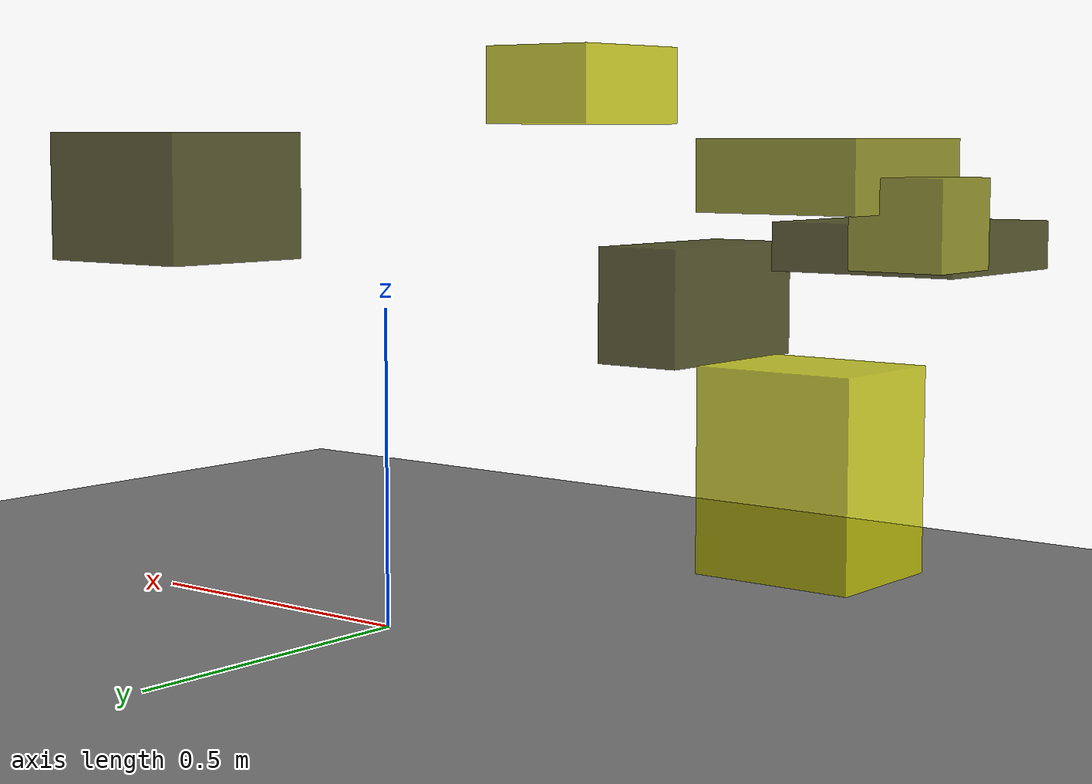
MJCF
<?xml version="1.0"?>
<mujoco model="obstacle_scene">
  <compiler angle="radian" coordinate="local"/>
  <option timestep="0.001" gravity="0 0 -9.81"/>

  <asset>
    <material name="obstacle_mat" rgba="0.8 0.8 0.0 0.8"/>
    <material name="ground_mat" rgba="0.5 0.5 0.5 1"/>
  </asset>

  <worldbody>
    <!-- Ground plane -->
    <geom name="ground" type="plane" size="3 3 0.1" material="ground_mat"/>

    <!-- Obstacles -->
    <body name="obstacle_0" pos="-0.198368 -0.553416 0.487521">
      <geom name="obs_0" type="box" size="0.077196 0.171000 0.096564" rgba="0.2 0.2 0.0 0.8"/>
    </body>
    <body name="obstacle_1" pos="-0.601930 -0.579287 0.627751">
      <geom name="obs_1" type="box" size="0.081997 0.077165 0.072677" rgba="0.5 0.5 0.0 0.8"/>
    </body>
    <body name="obstacle_2" pos="-0.212333 -0.219509 0.843012">
      <geom name="obs_2" type="box" size="0.096240 0.116915 0.059373" rgba="0.8 0.8 0.0 0.8"/>
    </body>
    <body name="obstacle_3" pos="0.842694 -0.325515 0.650929">
      <geom name="obs_3" type="box" size="0.171532 0.161150 0.120683" rgba="0.2 0.2 0.0 0.8"/>
    </body>
    <body name="obstacle_4" pos="-0.428172 -0.595112 0.702069">
      <geom name="obs_4" type="box" size="0.146780 0.166518 0.059058" rgba="0.5 0.5 0.0 0.8"/>
    </body>
    <body name="obstacle_5" pos="-0.794363 0.053007 0.335378">
      <geom name="obs_5" type="box" size="0.112600 0.095795 0.135741" rgba="0.8 0.8 0.0 0.8"/>
    </body>
    <body name="obstacle_6" pos="-0.508671 -0.724285 0.585045">
      <geom name="obs_6" type="box" size="0.164637 0.165774 0.040137" rgba="0.2 0.2 0.0 0.8"/>
    </body>
  </worldbody>
</mujoco>
